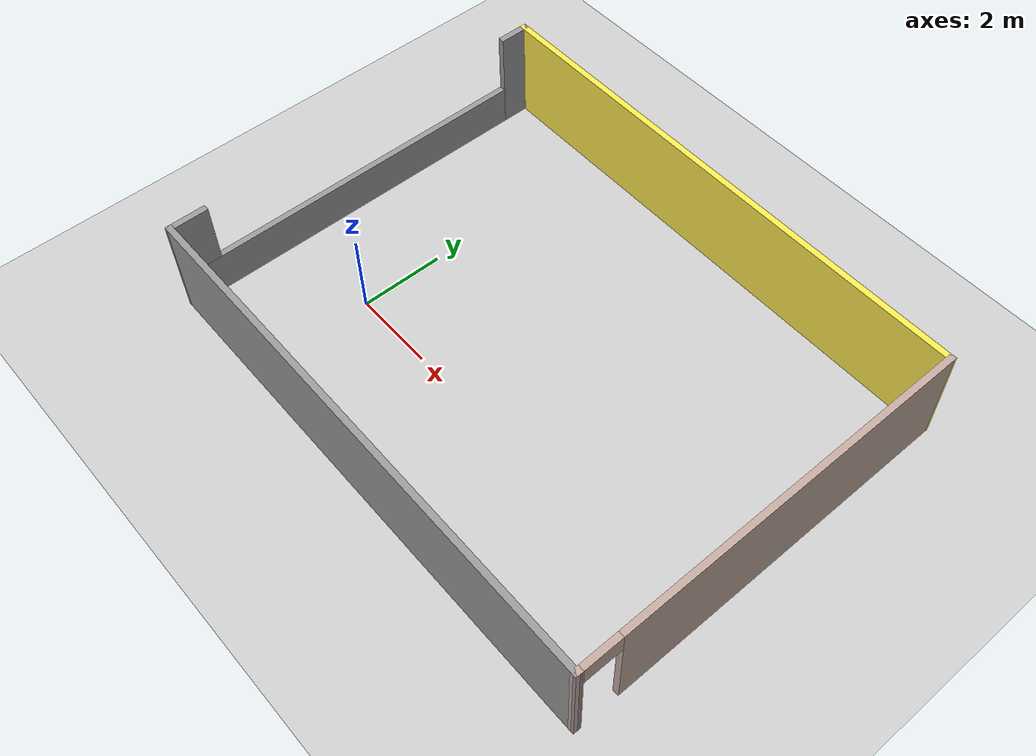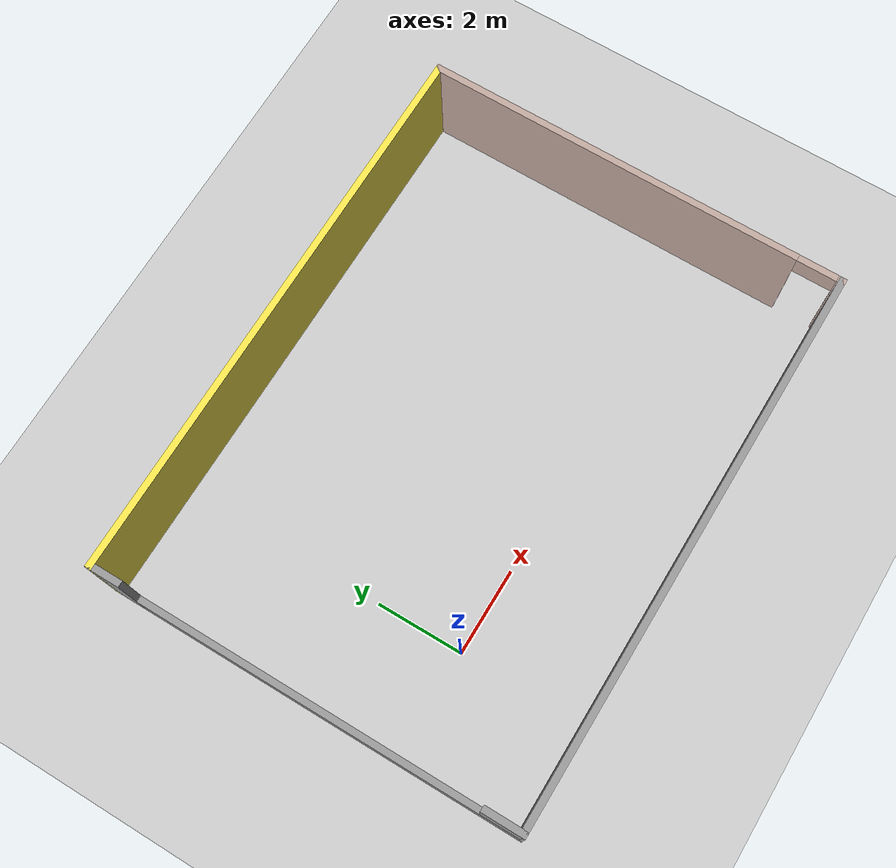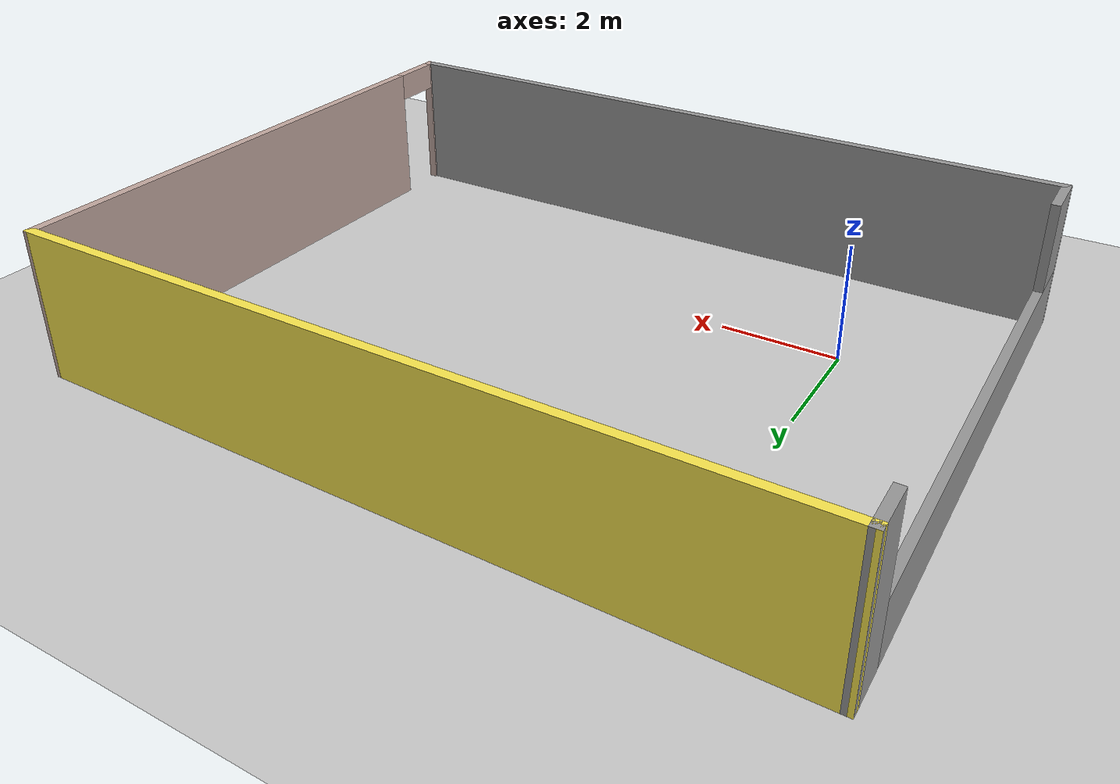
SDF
<sdf version="1.4">
  <world name="default">

    <scene>
      <ambient>0.4 0.4 0.4 1</ambient>
      <background>0.7 0.7 0.7 1</background>
      <shadows>true</shadows>
    </scene>

    <!-- A global light source -->
    <include>
      <uri>model://sun</uri>
    </include>

    <!-- A ground plane -->
    <include>
      <uri>model://ground_plane</uri>
    </include>

    <!-- my maze -->
    <include>
      <uri>model://lab404</uri>
    </include>

    <physics type="ode">
      <real_time_update_rate>1000.0</real_time_update_rate>
      <max_step_size>0.001</max_step_size>
      <real_time_factor>1</real_time_factor>
      <ode>
        <solver>
          <type>quick</type>
          <iters>150</iters>
          <precon_iters>0</precon_iters>
          <sor>1.400000</sor>
          <use_dynamic_moi_rescaling>1</use_dynamic_moi_rescaling>
        </solver>
        <constraints>
          <cfm>0.00001</cfm>
          <erp>0.2</erp>
          <contact_max_correcting_vel>2000.000000</contact_max_correcting_vel>
          <contact_surface_layer>0.01000</contact_surface_layer>
        </constraints>
      </ode>
    </physics>
  </world>

</sdf>

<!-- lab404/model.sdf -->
<sdf version='1.6'>
  <model name='lab404'>
    <pose frame=''>3.8355 1.905 0 0 -0 0</pose>
    <link name='Wall_0'>
      <collision name='Wall_0_Collision'>
        <geometry>
          <box>
            <size>12.8011 0.15 2.5</size>
          </box>
        </geometry>
        <pose frame=''>0 0 1.25 0 -0 0</pose>
      </collision>
      <visual name='Wall_0_Visual'>
        <pose frame=''>0 0 1.25 0 -0 0</pose>
        <geometry>
          <box>
            <size>12.8011 0.15 2.5</size>
          </box>
        </geometry>
        <material>
          <script>
            <uri>file://media/materials/scripts/gazebo.material</uri>
            <name>Gazebo/Grey</name>
          </script>
          <ambient>1 1 1 1</ambient>
        </material>
        <meta>
          <layer>0</layer>
        </meta>
      </visual>
      <pose frame=''>0 -4.8 0 0 -0 -0.007114</pose>
    </link>
    <link name='Wall_1'>
      <pose frame=''>6.3255 -0.045 0 0 -0 1.5708</pose>
      <visual name='Wall_1_Visual_0'>
        <pose frame=''>-4.78382 0 1.25 0 -0 0</pose>
        <geometry>
          <box>
            <size>0.182364 0.15 2.5</size>
          </box>
        </geometry>
        <material>
          <script>
            <uri>file://media/materials/scripts/gazebo.material</uri>
            <name>Gazebo/Grey</name>
          </script>
          <ambient>0.760784 0.662745 0.627451 1</ambient>
        </material>
        <meta>
          <layer>0</layer>
        </meta>
      </visual>
      <collision name='Wall_1_Collision_0'>
        <geometry>
          <box>
            <size>0.182364 0.15 2.5</size>
          </box>
        </geometry>
        <pose frame=''>-4.78382 0 1.25 0 -0 0</pose>
      </collision>
      <visual name='Wall_1_Visual_1'>
        <pose frame=''>0.541182 0 1.25 0 -0 0</pose>
        <geometry>
          <box>
            <size>8.66764 0.15 2.5</size>
          </box>
        </geometry>
        <material>
          <script>
            <uri>file://media/materials/scripts/gazebo.material</uri>
            <name>Gazebo/Grey</name>
          </script>
          <ambient>0.760784 0.662745 0.627451 1</ambient>
        </material>
        <meta>
          <layer>0</layer>
        </meta>
      </visual>
      <collision name='Wall_1_Collision_1'>
        <geometry>
          <box>
            <size>8.66764 0.15 2.5</size>
          </box>
        </geometry>
        <pose frame=''>0.541182 0 1.25 0 -0 0</pose>
      </collision>
      <visual name='Wall_1_Visual_2'>
        <pose frame=''>-4.24264 0 2.25 0 -0 0</pose>
        <geometry>
          <box>
            <size>0.9 0.15 0.5</size>
          </box>
        </geometry>
        <material>
          <script>
            <uri>file://media/materials/scripts/gazebo.material</uri>
            <name>Gazebo/Grey</name>
          </script>
          <ambient>0.760784 0.662745 0.627451 1</ambient>
        </material>
        <meta>
          <layer>0</layer>
        </meta>
      </visual>
      <collision name='Wall_1_Collision_2'>
        <geometry>
          <box>
            <size>0.9 0.15 0.5</size>
          </box>
        </geometry>
        <pose frame=''>-4.24264 0 2.25 0 -0 0</pose>
      </collision>
    </link>
    <link name='Wall_2'>
      <collision name='Wall_2_Collision'>
        <geometry>
          <box>
            <size>12.8011 0.15 2.5</size>
          </box>
        </geometry>
        <pose frame=''>0 0 1.25 0 -0 0</pose>
      </collision>
      <visual name='Wall_2_Visual'>
        <pose frame=''>0 0 1.25 0 -0 0</pose>
        <geometry>
          <box>
            <size>12.8011 0.15 2.5</size>
          </box>
        </geometry>
        <material>
          <script>
            <uri>file://media/materials/scripts/gazebo.material</uri>
            <name>Gazebo/Grey</name>
          </script>
          <ambient>0.988235 0.913725 0.309804 1</ambient>
        </material>
        <meta>
          <layer>0</layer>
        </meta>
      </visual>
      <pose frame=''>0 4.8 0 0 -0 3.13448</pose>
    </link>
    <link name='Wall_3'>
      <pose frame=''>-6.3255 0.045 0 0 -0 -1.5708</pose>
      <visual name='Wall_3_Visual_0'>
        <pose frame=''>-4.47804 0 1.25 0 -0 0</pose>
        <geometry>
          <box>
            <size>0.793928 0.15 2.5</size>
          </box>
        </geometry>
        <material>
          <script>
            <uri>file://media/materials/scripts/gazebo.material</uri>
            <name>Gazebo/Grey</name>
          </script>
          <ambient>1 1 1 1</ambient>
        </material>
        <meta>
          <layer>0</layer>
        </meta>
      </visual>
      <collision name='Wall_3_Collision_0'>
        <geometry>
          <box>
            <size>0.793928 0.15 2.5</size>
          </box>
        </geometry>
        <pose frame=''>-4.47804 0 1.25 0 -0 0</pose>
      </collision>
      <visual name='Wall_3_Visual_1'>
        <pose frame=''>0.396964 0 0.5 0 -0 0</pose>
        <geometry>
          <box>
            <size>8.95607 0.15 1</size>
          </box>
        </geometry>
        <material>
          <script>
            <uri>file://media/materials/scripts/gazebo.material</uri>
            <name>Gazebo/Grey</name>
          </script>
          <ambient>1 1 1 1</ambient>
        </material>
        <meta>
          <layer>0</layer>
        </meta>
      </visual>
      <collision name='Wall_3_Collision_1'>
        <geometry>
          <box>
            <size>8.95607 0.15 1</size>
          </box>
        </geometry>
        <pose frame=''>0.396964 0 0.5 0 -0 0</pose>
      </collision>
      <visual name='Wall_3_Visual_2'>
        <pose frame=''>4.39696 0 1.75 0 -0 0</pose>
        <geometry>
          <box>
            <size>0.956072 0.15 1.5</size>
          </box>
        </geometry>
        <material>
          <script>
            <uri>file://media/materials/scripts/gazebo.material</uri>
            <name>Gazebo/Grey</name>
          </script>
          <ambient>1 1 1 1</ambient>
        </material>
        <meta>
          <layer>0</layer>
        </meta>
      </visual>
      <collision name='Wall_3_Collision_2'>
        <geometry>
          <box>
            <size>0.956072 0.15 1.5</size>
          </box>
        </geometry>
        <pose frame=''>4.39696 0 1.75 0 -0 0</pose>
      </collision>
    </link>
    <static>1</static>
  </model>
</sdf>
